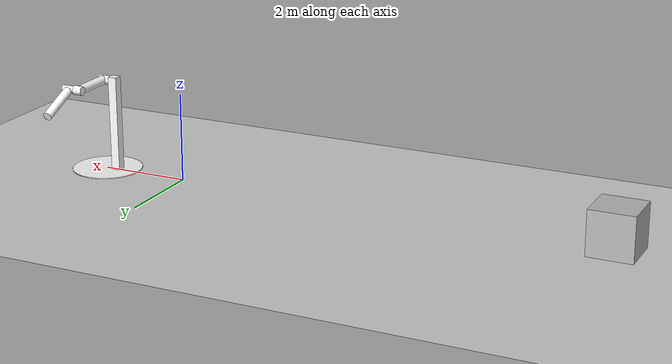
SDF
<?xml version="1.0" ?>
<sdf version="1.6">
  <world name="default">
    <include>
      <uri>model://ground_plane</uri>
    </include>
    <include>
      <uri>model://sun</uri>
    </include>

    <model name="camera_model">
      <static>true</static>
      <pose>-10.0 0.0 0.5 0 0 0</pose>
      <link name="link">
        <visual name="visual">
          <geometry>
            <box>
              <size>1 1 1</size>
            </box>
          </geometry>
        </visual>
        <!-- High fps high-res camera to test strict rate -->
        <sensor name="camera_sensor" type="camera">
          <camera>
            <horizontal_fov>1.0472</horizontal_fov>
            <image>
              <width>1280</width>
              <height>720</height>
            </image>
          </camera>
          <always_on>1</always_on>
          <!-- We choose a high fps on purpose. The goal is to check the effect
            of lockstep. -->
          <update_rate>500</update_rate>
          <visualize>true</visualize>
        </sensor>
        <!-- Regular camera, to make sure strict rate is only applied to the sensor intended -->
        <sensor name="camera_sensor_regular" type="camera">
          <camera>
            <horizontal_fov>1.0472</horizontal_fov>
            <image>
              <width>320</width>
              <height>240</height>
            </image>
          </camera>
          <always_on>1</always_on>
          <update_rate>30</update_rate>
          <visualize>true</visualize>
        </sensor>
      </link>
    </model>

    <!-- Double pendulum -->
    <include>
      <name>active_pendulum</name>
      <uri>model://double_pendulum_with_base</uri>
      <pose>2 0 0 0 0 0</pose>
      <scale>0.5 0.5 0.5</scale>
    </include>

  </world>
</sdf>

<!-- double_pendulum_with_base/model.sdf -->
<sdf version="1.5">
  <model name="double_pendulum_with_base">
    <link name="base">
      <inertial>
        <mass>100</mass>
      </inertial>
      <visual name="vis_plate_on_ground">
        <pose>0 0 0.01 0 0 0</pose>
        <geometry>
          <cylinder>
            <radius>0.8</radius>
            <length>0.02</length>
          </cylinder>
        </geometry>
        <material><diffuse>1 1 1 1</diffuse><specular>0.1 0.1 0.1 1</specular></material>
      </visual>
      <visual name="vis_pole">
        <pose>-0.275 0 1.1 0 0 0</pose>
        <geometry>
          <box>
            <size>0.2 0.2 2.2</size>
          </box>
        </geometry>
        <material><diffuse>1 1 1 1</diffuse><specular>0.1 0.1 0.1 1</specular></material>
      </visual>
      <collision name="col_plate_on_ground">
        <pose>0 0 0.01 0 0 0</pose>
        <geometry>
          <cylinder>
            <radius>0.8</radius>
            <length>0.02</length>
          </cylinder>
        </geometry>
      </collision>
      <collision name="col_pole">
        <pose>-0.275 0 1.1 0 0 0</pose>
        <geometry>
          <box>
            <size>0.2 0.2 2.2</size>
          </box>
        </geometry>
      </collision>
    </link>
    <!-- upper link, length 1, IC -90 degrees -->
    <link name="upper_link">
      <pose>0 0 2.1 -1.5708 0 0</pose>
      <self_collide>0</self_collide>
      <inertial>
        <pose>0 0 0.5 0 0 0</pose>
      </inertial>
      <visual name="vis_upper_joint">
        <pose>-0.05 0 0 0 1.5708 0</pose>
        <geometry>
          <cylinder>
            <radius>0.1</radius>
            <length>0.3</length>
          </cylinder>
        </geometry>
        <material><diffuse>1 1 1 1</diffuse><specular>0.1 0.1 0.1 1</specular></material>
      </visual>
      <visual name="vis_lower_joint">
        <pose>0 0 1.0 0 1.5708 0</pose>
        <geometry>
          <cylinder>
            <radius>0.1</radius>
            <length>0.2</length>
          </cylinder>
        </geometry>
        <material><diffuse>1 1 1 1</diffuse><specular>0.1 0.1 0.1 1</specular></material>
      </visual>
      <visual name="vis_cylinder">
        <pose>0 0 0.5 0 0 0</pose>
        <geometry>
          <cylinder>
            <radius>0.1</radius>
            <length>0.9</length>
          </cylinder>
        </geometry>
        <material><diffuse>1 1 1 1</diffuse><specular>0.1 0.1 0.1 1</specular></material>
      </visual>
      <collision name="col_upper_joint">
        <pose>-0.05 0 0 0 1.5708 0</pose>
        <geometry>
          <cylinder>
            <radius>0.1</radius>
            <length>0.3</length>
          </cylinder>
        </geometry>
      </collision>
      <collision name="col_lower_joint">
        <pose>0 0 1.0 0 1.5708 0</pose>
        <geometry>
          <cylinder>
            <radius>0.1</radius>
            <length>0.2</length>
          </cylinder>
        </geometry>
      </collision>
      <collision name="col_cylinder">
        <pose>0 0 0.5 0 0 0</pose>
        <geometry>
          <cylinder>
            <radius>0.1</radius>
            <length>0.9</length>
          </cylinder>
        </geometry>
      </collision>
    </link>
    <!-- lower link, length 1, IC ~-120 degrees more -->
    <link name="lower_link">
      <pose>0.25 1.0 2.1 -2 0 0</pose>
      <self_collide>0</self_collide>
      <inertial>
        <pose>0 0 0.5 0 0 0</pose>
      </inertial>
      <visual name="vis_lower_joint">
        <pose>0 0 0 0 1.5708 0</pose>
        <geometry>
          <cylinder>
            <radius>0.08</radius>
            <length>0.3</length>
          </cylinder>
        </geometry>
        <material><diffuse>1 1 1 1</diffuse><specular>0.1 0.1 0.1 1</specular></material>
      </visual>
      <visual name="vis_cylinder">
        <pose>0 0 0.5 0 0 0</pose>
        <geometry>
          <cylinder>
            <radius>0.1</radius>
            <length>0.9</length>
          </cylinder>
        </geometry>
        <material><diffuse>1 1 1 1</diffuse><specular>0.1 0.1 0.1 1</specular></material>
      </visual>
      <collision name="col_lower_joint">
        <pose>0 0 0 0 1.5708 0</pose>
        <geometry>
          <cylinder>
            <radius>0.08</radius>
            <length>0.3</length>
          </cylinder>
        </geometry>
      </collision>
      <collision name="col_cylinder">
        <pose>0 0 0.5 0 0 0</pose>
        <geometry>
          <cylinder>
            <radius>0.1</radius>
            <length>0.9</length>
          </cylinder>
        </geometry>
      </collision>
    </link>
    <!-- pin joint for upper link, at origin of upper link -->
    <joint name="upper_joint" type="revolute">
      <parent>base</parent>
      <child>upper_link</child>
      <axis>
        <xyz>1.0 0 0</xyz>
      </axis>
    </joint>
    <!-- pin joint for lower link, at origin of child link -->
    <joint name="lower_joint" type="revolute">
      <parent>upper_link</parent>
      <child>lower_link</child>
      <axis>
        <xyz>1.0 0 0</xyz>
      </axis>
    </joint>
  </model>
</sdf>
